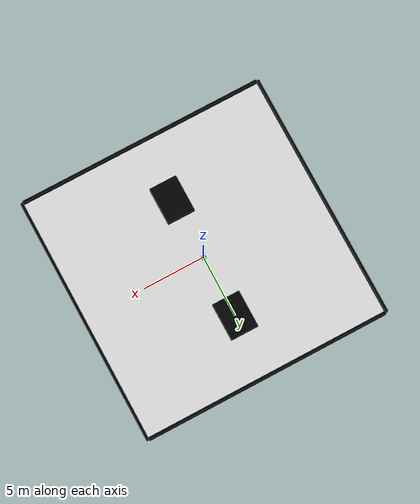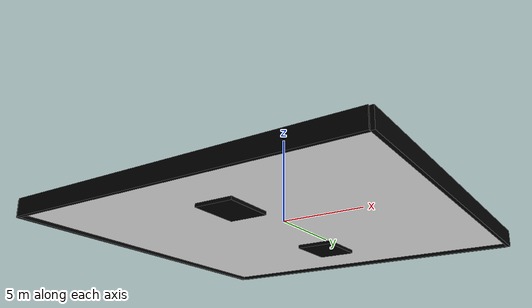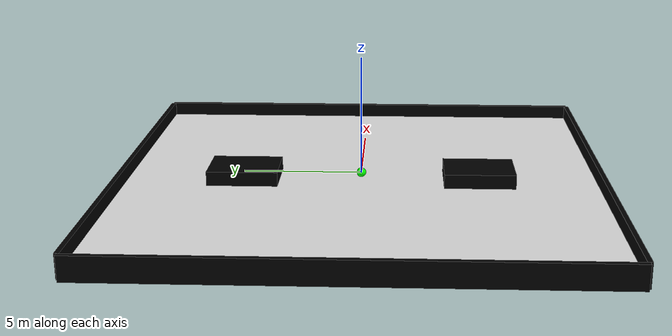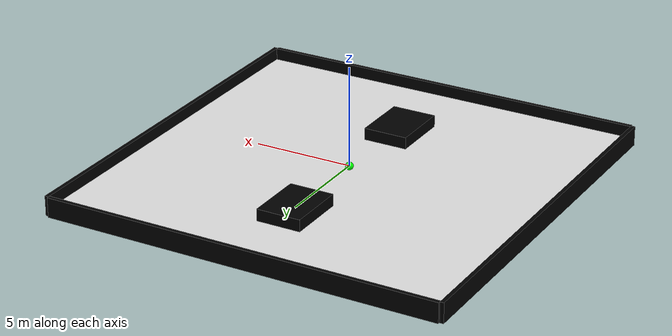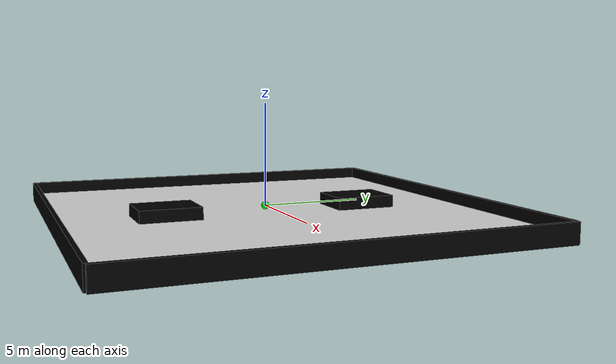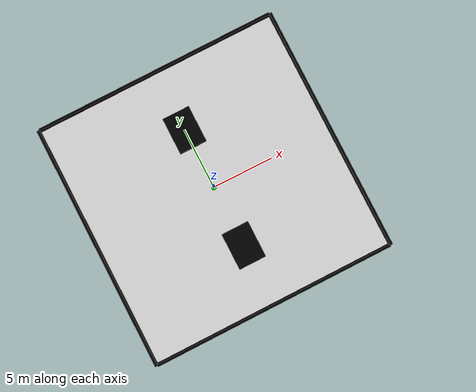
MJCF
<mujoco>
    <option gravity="0 0 0" timestep="0.01"/>
<default>
    <geom rgba="0 0 0 1"/>
</default>
    <worldbody>
 	<light diffuse=".2 .2 .2" pos="0 0 20" dir="0 0 -1" mode="track"/>
	<body>
	  <geom name='floor' pos='0 0 -0.4' size='10 10 .1' mass="10000" type='box' condim='3' rgba=".9 .9 .9 1"/>
		<camera name="center" mode="fixed" pos="0 0 30" />
	</body>
	<body>
	  <geom name='wall1' pos='-10.1 0 -0.2' size='.1 10.1 .5' mass="10000" type='box' condim='3'/>
	</body>
	<body>
	  <geom name='wall2' pos='10.1 0 -0.2' size='.1 10.1 .5' mass="10000" type='box' condim='3'/>
	</body>
	<body>
	  <geom name='wall3' pos='0 -10.1 -0.2' size='10 .1 .5' mass="10000" type='box' condim='3'/>
	</body>
	<body>
	  <geom name='wall4' pos='0 10.1 -0.2' size='10 .1 .5' mass="10000" type='box' condim='3'/>
	</body>
	<body>
	  <geom name='obstacle1' pos='0 5 -0.2' size='1.125 1.5 .5' mass="10000" type='box' condim='3'/>
	</body>
    <body>
	  <geom name='obstacle2' pos='0 -5 -0.2' size='1.125 1.5 .5' mass="10000" type='box' condim='3'/>
	</body>
 	<body name="prey" pos="0 0 0">
            <joint axis="1 0 0" damping="0" name="prey0" pos="0 0 0" type="slide"/>
            <joint axis="0 1 0" damping="0" name="prey1" pos="0 0 0" type="slide"/>
            <geom type="sphere" size="0.2" mass="8" rgba="0 1 0 1"/>
        </body>
	<body name="predator" pos="0 0 0">
            <joint axis="1 0 0" damping="0" name="predator0" pos="0 0 0" type="slide"/>
            <joint axis="0 1 0" damping="0" name="predator1" pos="0 0 0" type="slide"/>
            <geom type="sphere" size="0.2" mass="10" rgba="1 0 0 1"/>
    	    <site name="end1" pos="0 0 0" type="sphere" size="0.01"/>
	</body>
    </worldbody>

    <actuator>

        <motor gear="10" joint="prey0"/>
        <motor gear="10" joint="prey1"/>

   	<motor gear="10" joint="predator0"/>
        <motor gear="10" joint="predator1"/>

    </actuator>
</mujoco>
